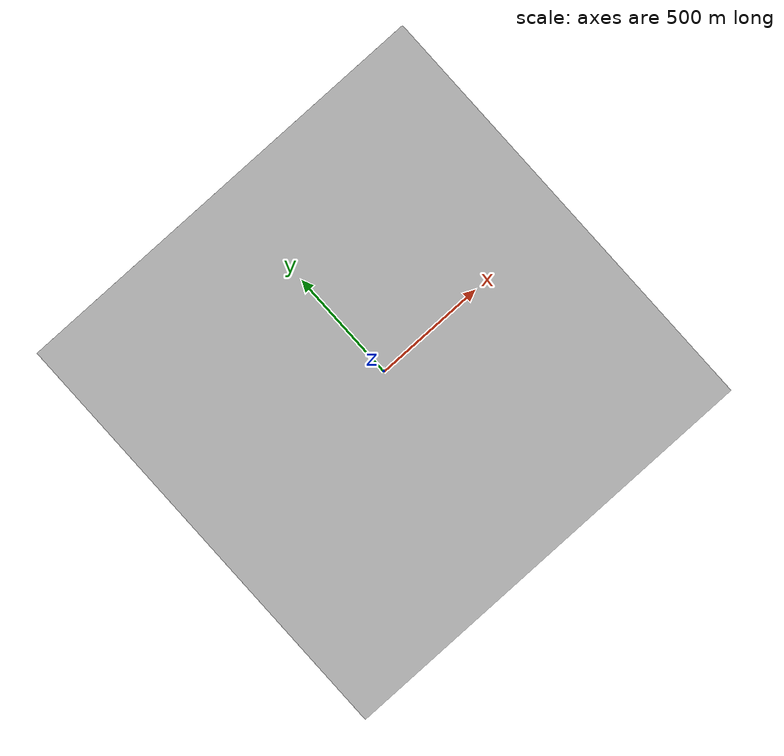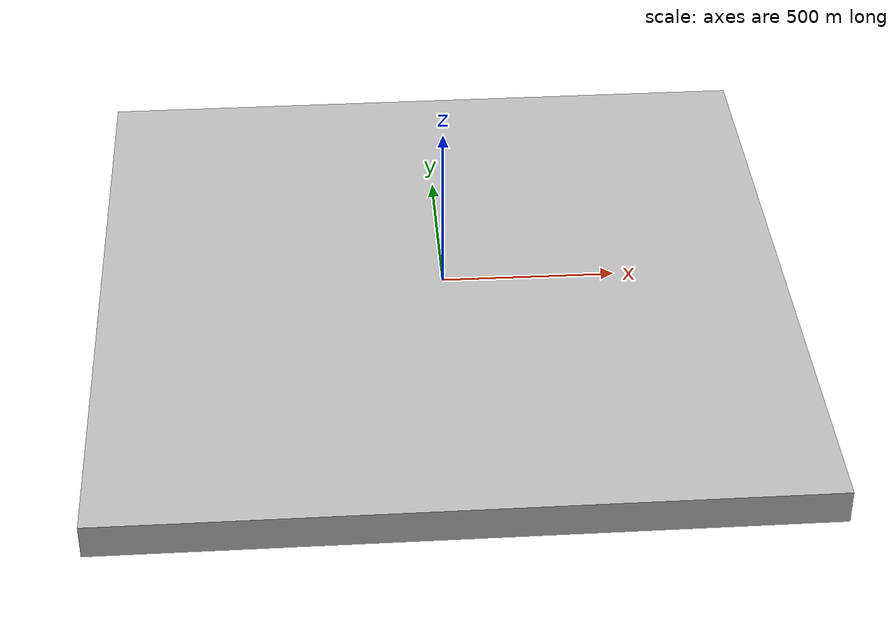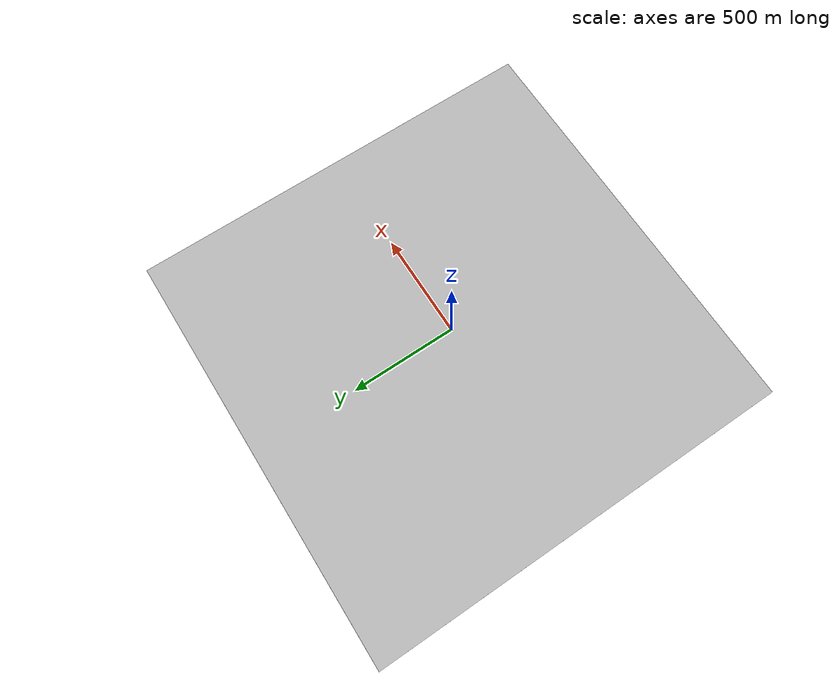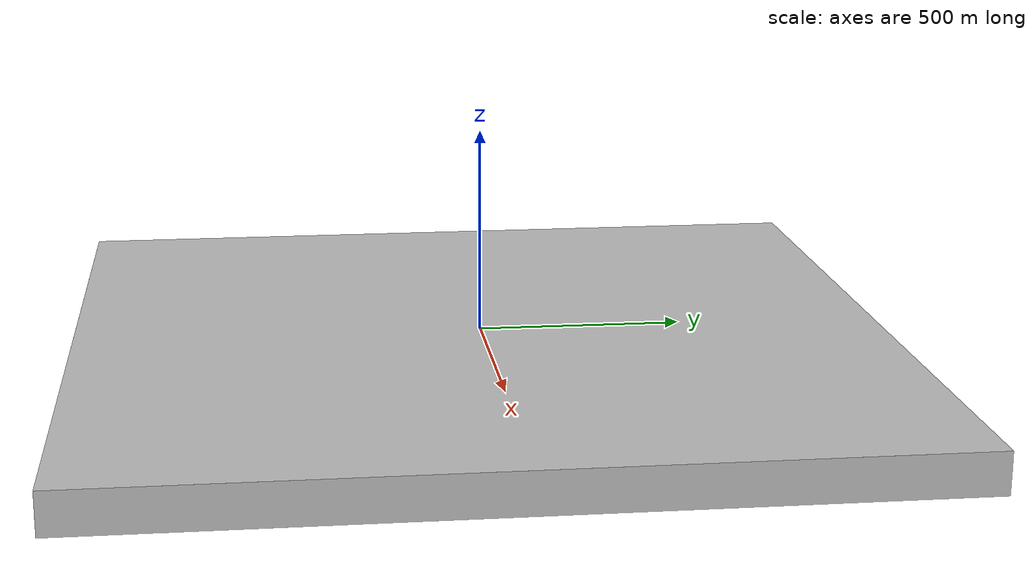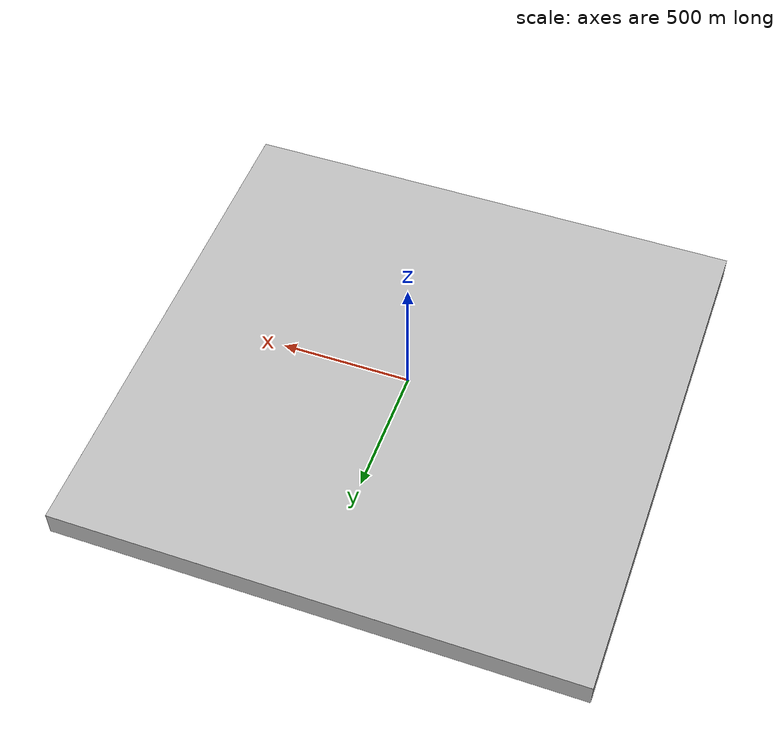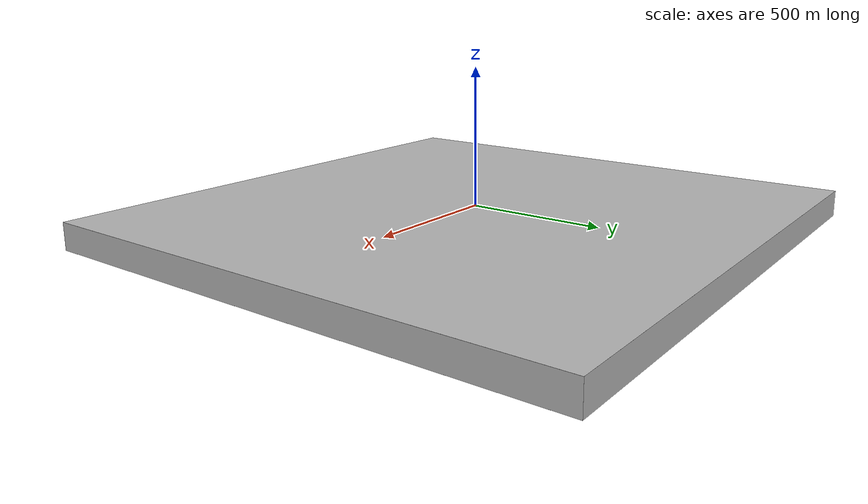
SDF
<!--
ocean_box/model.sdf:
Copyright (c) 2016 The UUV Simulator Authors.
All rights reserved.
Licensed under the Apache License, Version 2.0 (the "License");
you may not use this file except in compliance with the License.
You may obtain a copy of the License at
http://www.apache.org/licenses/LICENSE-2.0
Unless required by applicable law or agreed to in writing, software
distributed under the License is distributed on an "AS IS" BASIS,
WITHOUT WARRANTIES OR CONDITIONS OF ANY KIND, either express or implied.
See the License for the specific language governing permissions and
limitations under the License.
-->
<sdf version="1.5">
 <world name="complex_underwater_terrain">
  <physics name="default_physics" default="true" type="ode">
   <max_step_size>0.002</max_step_size>
   <real_time_factor>1</real_time_factor>
   <real_time_update_rate>500</real_time_update_rate>
   <ode><solver><type>quick</type><iters>50</iters><sor>0.5</sor></solver></ode>
  </physics>
  <scene>
   <ambient>0.02 0.05 0.1 1.0</ambient>
   <sky><clouds><speed>8</speed></clouds></sky>
   <shadows>1</shadows>
   <fog>
    <color>0.1 0.2 0.3 1.0</color>
    <type>linear</type>
    <density>0.1</density>
    <start>5</start>
    <end>50</end>
   </fog>
  </scene>
  <spherical_coordinates>
   <latitude_deg>40.7128</latitude_deg>
   <longitude_deg>14.2460</longitude_deg>
  </spherical_coordinates>
  <light type="directional" name="sun_underwater">
   <pose>0 0 50 0 0 0</pose>
   <diffuse>0.3 0.4 0.6 1</diffuse>
   <specular>0.1 0.1 0.2 1</specular>
   <direction>0.2 0.2 -1</direction>
  </light>
  <light type="directional" name="ambient_underwater_1">
   <pose>-50 -50 20 0 0 0</pose>
   <diffuse>0.2 0.3 0.4 1</diffuse>
   <specular>0.05 0.05 0.1 1</specular>
   <direction>0.3 0.3 -0.5</direction>
   <cast_shadows>false</cast_shadows>
  </light>
  <light type="directional" name="ambient_underwater_2">
   <pose>50 50 20 0 0 0</pose>
   <diffuse>0.15 0.25 0.35 1</diffuse>
   <specular>0.05 0.05 0.1 1</specular>
   <direction>-0.3 -0.3 -0.5</direction>
   <cast_shadows>false</cast_shadows>
  </light>
  <include><uri>model://ocean_box</uri></include>
  <model name="deep_trench">
   <static>true</static>
   <link name="trench_link">
    <collision name="trench_collision"><geometry><box><size>200 20 50</size></box></geometry></collision>
    <visual name="trench_visual">
     <geometry><box><size>200 20 50</size></box></geometry>
     <material>
      <ambient>0.1 0.1 0.15 1</ambient>
      <diffuse>0.2 0.2 0.3 1</diffuse>
      <specular>0.05 0.05 0.1 1</specular>
     </material>
    </visual>
   </link>
   <pose>100 0 -120 0 0 0.3</pose>
  </model>
  <model name="rock_1">
   <static>true</static>
   <link name="rock_link">
    <collision name="rock_collision"><geometry><sphere><radius>5</radius></sphere></geometry></collision>
    <visual name="rock_visual">
     <geometry><sphere><radius>5</radius></sphere></geometry>
     <material>
      <ambient>0.2 0.2 0.2 1</ambient>
      <diffuse>0.4 0.4 0.4 1</diffuse>
      <specular>0.1 0.1 0.1 1</specular>
     </material>
    </visual>
   </link>
   <pose>-50 80 -75 0 0 0</pose>
  </model>
  <model name="rock_2">
   <static>true</static>
   <link name="rock_link">
    <collision name="rock_collision"><geometry><box><size>8 6 4</size></box></geometry></collision>
    <visual name="rock_visual">
     <geometry><box><size>8 6 4</size></box></geometry>
     <material>
      <ambient>0.25 0.2 0.15 1</ambient>
      <diffuse>0.5 0.4 0.3 1</diffuse>
      <specular>0.1 0.1 0.1 1</specular>
     </material>
    </visual>
   </link>
   <pose>70 -60 -78 0 0.3 0.7</pose>
  </model>
  <plugin name="underwater_current_plugin" filename="libuuv_underwater_current_ros_plugin.so">
   <namespace>hydrodynamics</namespace>
   <constant_current>
    <topic>current_velocity</topic>
    <velocity><mean>0.5</mean><min>0</min><max>2</max><mu>0.0</mu><noiseAmp>0.1</noiseAmp></velocity>
    <horizontal_angle>
     <mean>0.785</mean>
     <min>-3.141592653589793238</min>
     <max>3.141592653589793238</max>
     <mu>0.0</mu>
     <noiseAmp>0.2</noiseAmp>
    </horizontal_angle>
    <vertical_angle>
     <mean>0</mean>
     <min>-0.5</min>
     <max>0.5</max>
     <mu>0.0</mu>
     <noiseAmp>0.1</noiseAmp>
    </vertical_angle>
   </constant_current>
  </plugin>
  <plugin name="sc_interface" filename="libuuv_sc_ros_interface_plugin.so"/>
 </world>
</sdf>

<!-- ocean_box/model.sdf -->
<sdf version="1.5">
  <model name="ocean_box">
    <static>true</static>
    <link name="link">
      <visual name="ground">
        <cast_shadows>false</cast_shadows>
        <pose>0 0 -100 0 0 0</pose>
        <geometry>
          <box>
            <size>2000 2000 .1</size>
          </box>
        </geometry>
        <material>
          <script>
            <uri>file://Media/materials/scripts/sand.material</uri>
            <name>UUVSimulator/SandAndStones</name>
          </script>
        </material>
      </visual>

      <collision name="ground">
        <pose>0 0 -100 0 0 0</pose>
        <geometry>
          <box>
            <size>2000 2000 .1</size>
          </box>
        </geometry>
      </collision>

      <visual name="surface">
        <cast_shadows>false</cast_shadows>
        <pose>0 0 0 0 0 0</pose>
        <geometry>
          <box>
            <size>2000 2000 .1</size>
          </box>
        </geometry>
        <material>
          <script>
            <uri>file://Media/materials/scripts/water.material</uri>
            <name>UUVSimulator/StaticDeepWater</name>
          </script>
        </material>
      </visual>

      <visual name="north">
        <cast_shadows>false</cast_shadows>
        <pose>1000 0 -50 0 0 0</pose>
        <geometry>
          <box>
            <size>.1 2000 100</size>
          </box>
        </geometry>
        <material>
          <script>
            <uri>file://Media/materials/scripts/water.material</uri>
            <name>UUVSimulator/SeaWall</name>
          </script>
        </material>
      </visual>

      <visual name="south">
        <cast_shadows>false</cast_shadows>
        <pose>-1000 0 -50 0 0 0</pose>
        <geometry>
          <box>
            <size>.1 2000 100</size>
          </box>
        </geometry>
        <material>
          <script>
            <uri>file://Media/materials/scripts/water.material</uri>
            <name>UUVSimulator/SeaWall</name>
          </script>
        </material>
      </visual>

      <visual name="east">
        <cast_shadows>false</cast_shadows>
        <pose>0 -1000 -50 0 0 0</pose>
        <geometry>
          <box>
            <size>2000 .1 100</size>
          </box>
        </geometry>
        <material>
          <script>
            <uri>file://Media/materials/scripts/water.material</uri>
            <name>UUVSimulator/SeaWall</name>
          </script>
        </material>
      </visual>

      <visual name="west">
        <cast_shadows>false</cast_shadows>
        <pose>0 1000 -50 0 0 0</pose>
        <geometry>
          <box>
            <size>2000 .1 100</size>
          </box>
        </geometry>
        <material>
          <script>
            <uri>file://Media/materials/scripts/water.material</uri>
            <name>UUVSimulator/SeaWall</name>
          </script>
        </material>
      </visual>
    </link>
  </model>
</sdf>
